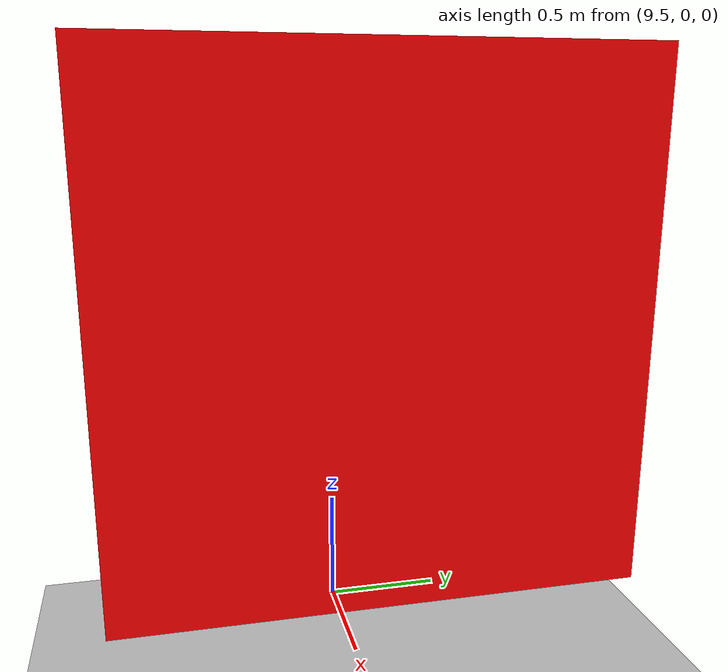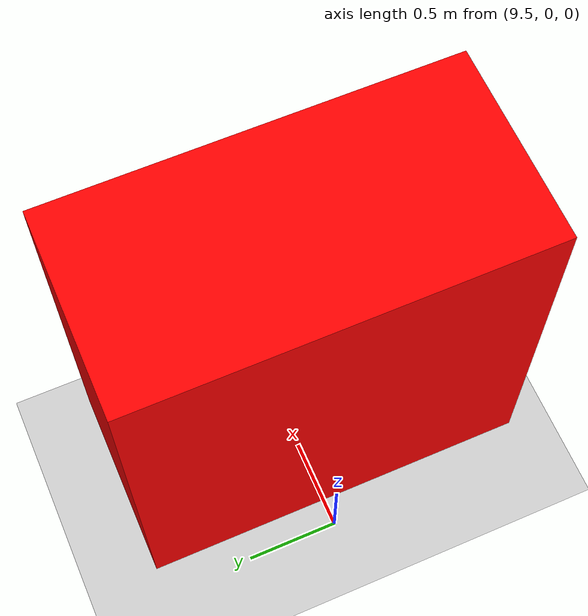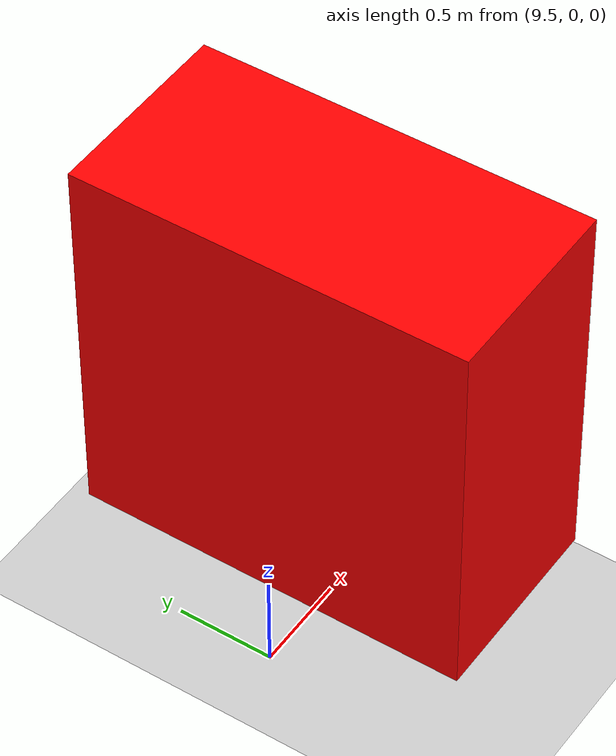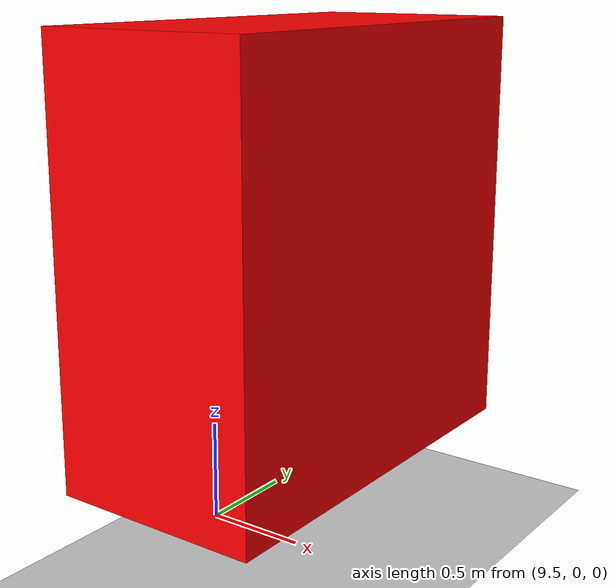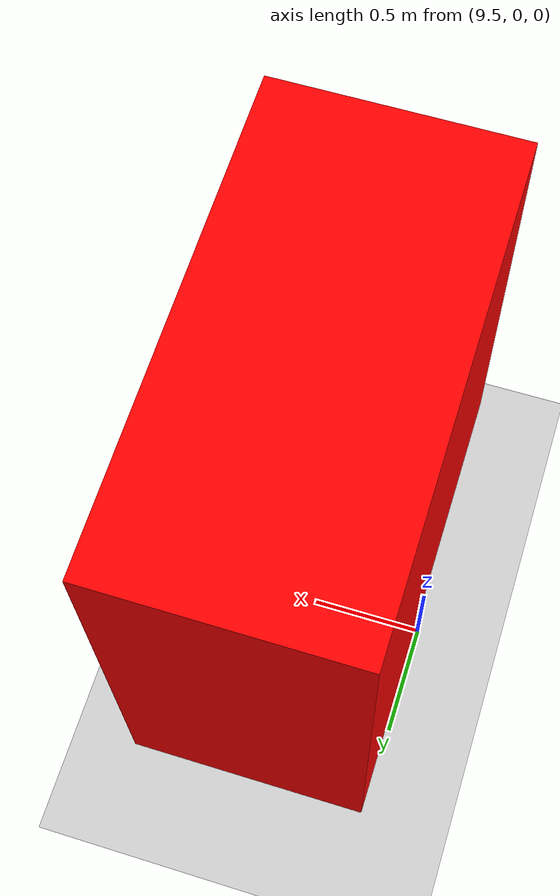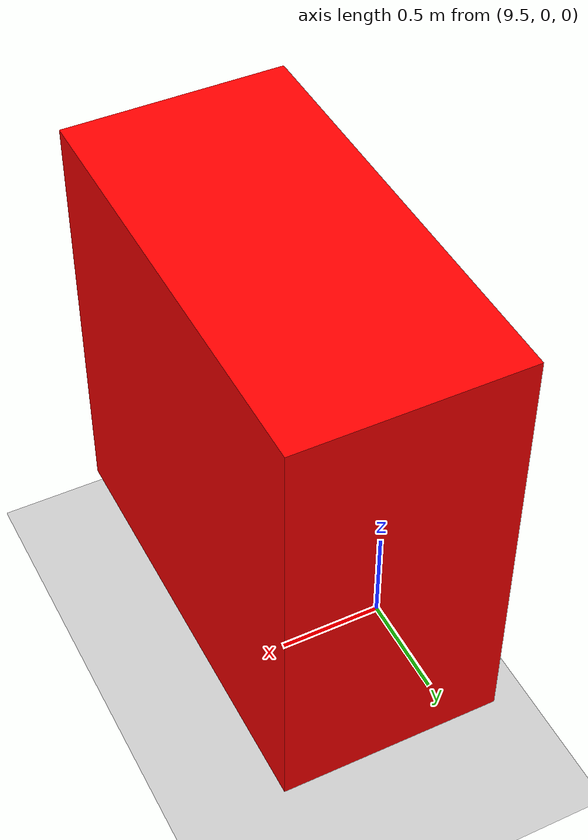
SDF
<?xml version="1.0"?>
<sdf version="1.6">
  <world name="gimbal_range_flight_demo">
    <include><uri>model://sun</uri></include>
    <include><uri>model://ground_plane</uri></include>

    <spherical_coordinates>
      <surface_model>EARTH_WGS84</surface_model>
      <latitude_deg>47.397743</latitude_deg>
      <longitude_deg>8.545594</longitude_deg>
      <elevation>0.0</elevation>
      <heading_deg>0</heading_deg>
    </spherical_coordinates>

    <physics name="flight_physics" default="1" type="ode">
      <gravity>0 0 -9.8066</gravity>
      <max_step_size>0.004</max_step_size>
      <real_time_factor>1</real_time_factor>
      <real_time_update_rate>250</real_time_update_rate>
      <magnetic_field>6.0e-06 2.3e-05 -4.2e-05</magnetic_field>
    </physics>

    <model name="red_target">
      <static>true</static>
      <pose>10 0 1.5 0 0 0</pose>
      <link name="target">
        <collision name="collision">
          <geometry><box><size>1 2 2</size></box></geometry>
        </collision>
        <visual name="visual">
          <geometry><box><size>1 2 2</size></box></geometry>
          <material><ambient>1 0 0 1</ambient><diffuse>1 0 0 1</diffuse></material>
        </visual>
      </link>
    </model>
  </world>
</sdf>
